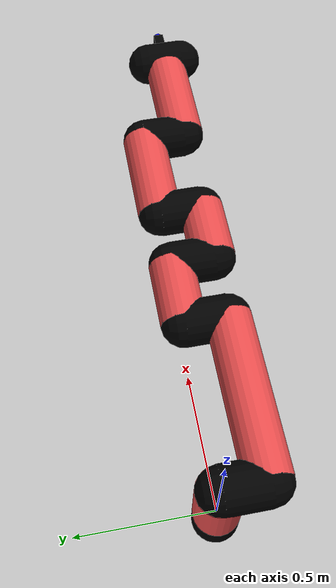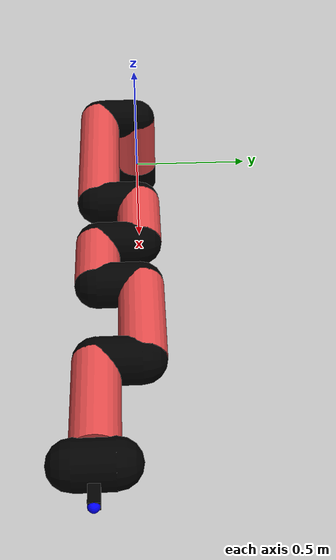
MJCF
<mujoco model="manipulator">
		<compiler angle="degree" coordinate="local" inertiafromgeom="auto" meshdir="meshes/"/>
		<option gravity="0 0 0" integrator="RK4" iterations="30" timestep="0.01"/>

		<default>
		<joint armature="1" limited="true" stiffness="10" damping="15" frictionloss="5.0"/>
		<geom conaffinity="1" condim="3" contype="1" friction=".5 .1 .1" margin="0.002"/>
		<motor ctrllimited="true"/>
		<position ctrllimited="true"/>
		</default>

		<asset>
		<texture builtin="gradient" height="100" rgb1="1.0 1.0 1.0" rgb2="1.0 1.0 1.0" type="skybox" width="100"/>
		<texture builtin="flat" height="32" name="arm_tex" rgb1="0.9 0.3 0.3" type="2d" width="32"/>
		<texture builtin="flat" height="32" name="gripper_tex" rgb1="0.0 0.0 0.0" type="cube" width="32"/>

		<material name="arm_mat" shininess="0.1" specular="0.1" texture="arm_tex"/>
		<material name="gripper_mat" shininess="1" specular="1" texture="gripper_tex"/>
		</asset>

		<worldbody>
		<light cutoff="45" diffuse=".8 .8 .8" dir="0 0.16 -1" directional="false" name="light" pos="0 -2.0 8.0" specular="0.3 0.3 0.3"/>

		<body name="base_link" pos="0 0 -0.1">
		<geom fromto="0 0 0 0 0 0.1" material="arm_mat" name="base_link" rgba="0.0 0.0 0.0 1" size="0.085" type="cylinder"/>
		</body>

		<body name="l1" pos="0 0 0">
<geom fromto="0 0 0 0 0 0.26" material="arm_mat" name="l1" rgba="0.9 0.3 0.3 1" size="0.085" type="cylinder"/>
<geom fromto="0 0 0.26 0 -0.16 0.26" material="arm_mat" name="l1_ex" rgba="0.0 0.0 0.0 1" size="0.085" type="capsule"/>
<joint axis="0 0 1" name="j1" pos="0 0 0" range="-90 90" damping="32.38" frictionloss="11.5"/>

<body name="l2" pos="0 -0.16 0.26">
<geom fromto="0 0 0 0.6 0 0" material="arm_mat" name="l2" rgba="0.9 0.3 0.3 1" size="0.085" type="cylinder"/>
<geom fromto="0.6 0 0 0.6 0.16 0" material="arm_mat" name="l2_ex" rgba="0.0 0.0 0.0 1" size="0.085" type="capsule"/>
<joint axis="0.0 1.0 0.0" name="j2" pos="0 0 0" range="-90 60" damping="31.3" frictionloss="9.58"/>

<body name="l3" pos="0.6 0.16 0">
<geom fromto="0 0 0 0.25 0 0" material="arm_mat" name="l3" rgba="0.9 0.3 0.3 1" size="0.085" type="cylinder"/>
<geom fromto="0.25 0 0 0.25 -0.16 0" material="arm_mat" name="l3_ex" rgba="0.0 0.0 0.0 1" size="0.085" type="capsule"/>
<joint axis="0.0 1.0 0.0" name="j3" pos="0 0 0" range="-30 60" damping="35.02" frictionloss="11.59"/>

<body name="l4" pos="0.25 -0.16 0">
<geom fromto="0 0 0 0.23 0 0" material="arm_mat" name="l4" rgba="0.9 0.3 0.3 1" size="0.085" type="cylinder"/>
<geom fromto="0.23 0 0 0.23 0.16 0" material="arm_mat" name="l4_ex" rgba="0.0 0.0 0.0 1" size="0.085" type="capsule"/>
<joint axis="0.0 1.0 0.0" name="j4" pos="0 0 0" range="-30 60" damping="24.71" frictionloss="9.47"/>

<body name="l5" pos="0.23 0.16 0">
<geom fromto="0 0 0 0.37 0 0" material="arm_mat" name="l5" rgba="0.9 0.3 0.3 1" size="0.085" type="cylinder"/>
<geom fromto="0.37 0 0 0.37 -0.16 0" material="arm_mat" name="l5_ex" rgba="0.0 0.0 0.0 1" size="0.085" type="capsule"/>
<joint axis="0.0 1.0 0.0" name="j5" pos="0 0 0" range="-30 60" damping="33.96" frictionloss="8.34"/>

<body name="l6" pos="0.37 -0.16 0">
<geom fromto="0 0 0 0.37 0 0" material="arm_mat" name="l6" rgba="0.9 0.3 0.3 1" size="0.085" type="cylinder"/>
<joint axis="0.0 1.0 0.0" name="j6" pos="0 0 0" range="-30 60" damping="36.89" frictionloss="10.0"/>

<body name="gripper" pos="0.37 0 0">
<geom fromto="0.05 -0.07 0 0.05 0.07 0" material="gripper_mat" name="gripper" rgba="0.0 0.0 0.0 1" size="0.085" type="capsule"/><joint axis="1 0 0" name="j7" pos="0 0 0" range="-90 90" damping="15" frictionloss="5.0"/><body name="finger" pos="0.1 0 0">
<geom fromto="0 0.0 0 0.1 0.0 0" material="gripper_mat" name="finger" rgba="0.0 0.0 0.0 1" size="0.020 0.06 0.06" type="box"/>
</body>
<site name="current" pos="0.2 0. 0.0" rgba="0. 0. 1.0 1" size="0.02" type="sphere"/>
</body>
</body>
</body>
</body>
</body>
</body>
</body>
</worldbody>
<actuator>
<motor ctrllimited="true" ctrlrange="-1.0 1.0" joint="j1" gear="69.74"/>
<motor ctrllimited="true" ctrlrange="-1.0 1.0" joint="j2" gear="75.18"/>
<motor ctrllimited="true" ctrlrange="-1.0 1.0" joint="j3" gear="68.31"/>
<motor ctrllimited="true" ctrlrange="-1.0 1.0" joint="j4" gear="74.41"/>
<motor ctrllimited="true" ctrlrange="-1.0 1.0" joint="j5" gear="95.71"/>
<motor ctrllimited="true" ctrlrange="-1.0 1.0" joint="j6" gear="85.8"/>
<motor ctrllimited="true" ctrlrange="-1.0 1.0" joint="j7" gear="80"/>
</actuator>
</mujoco>
